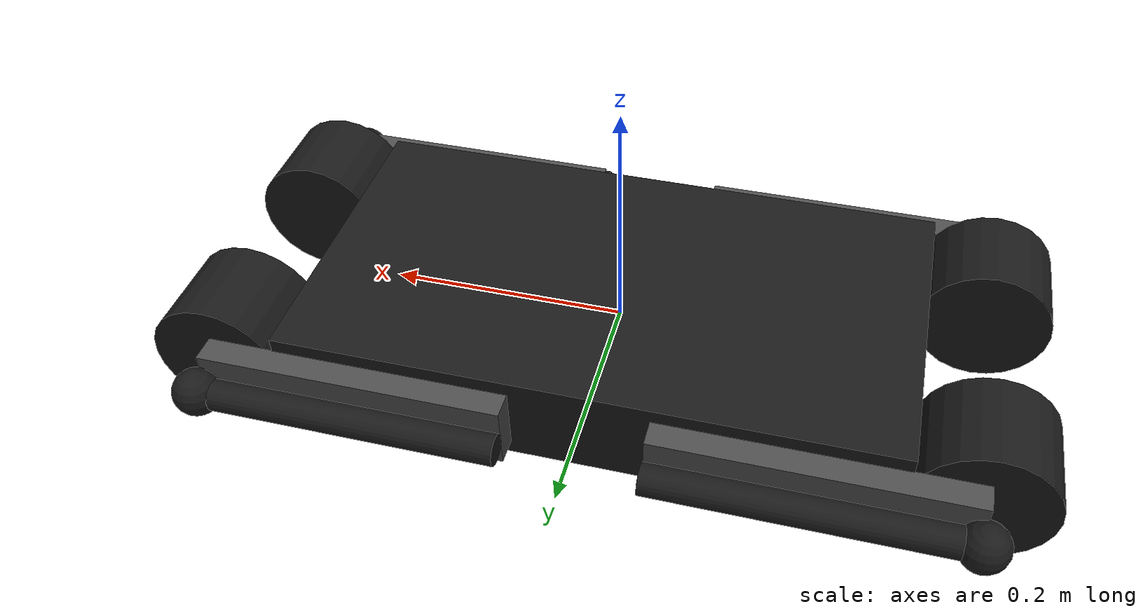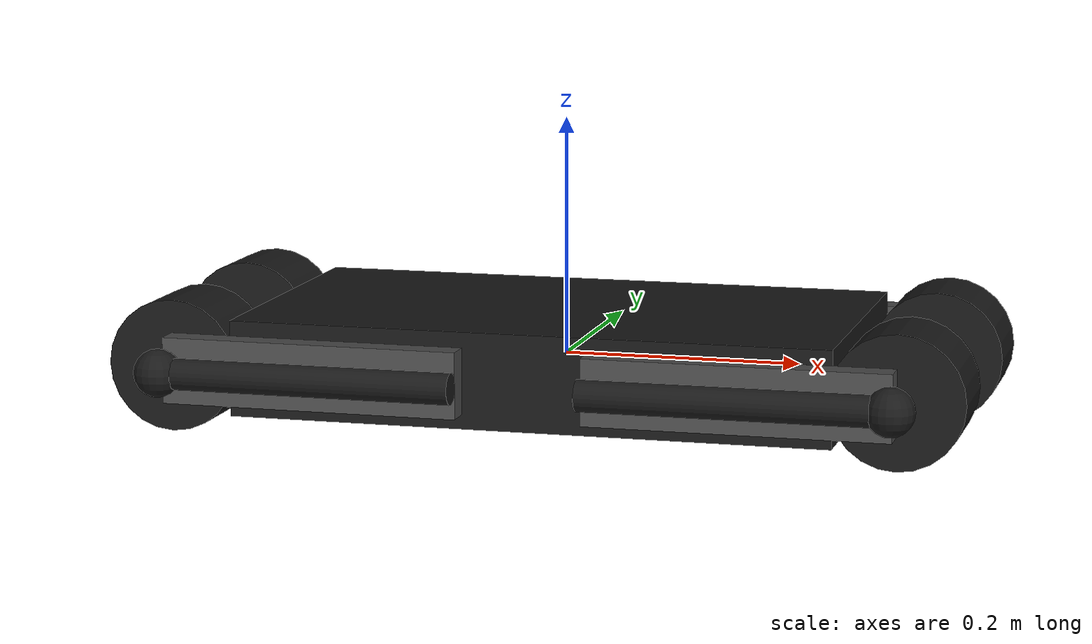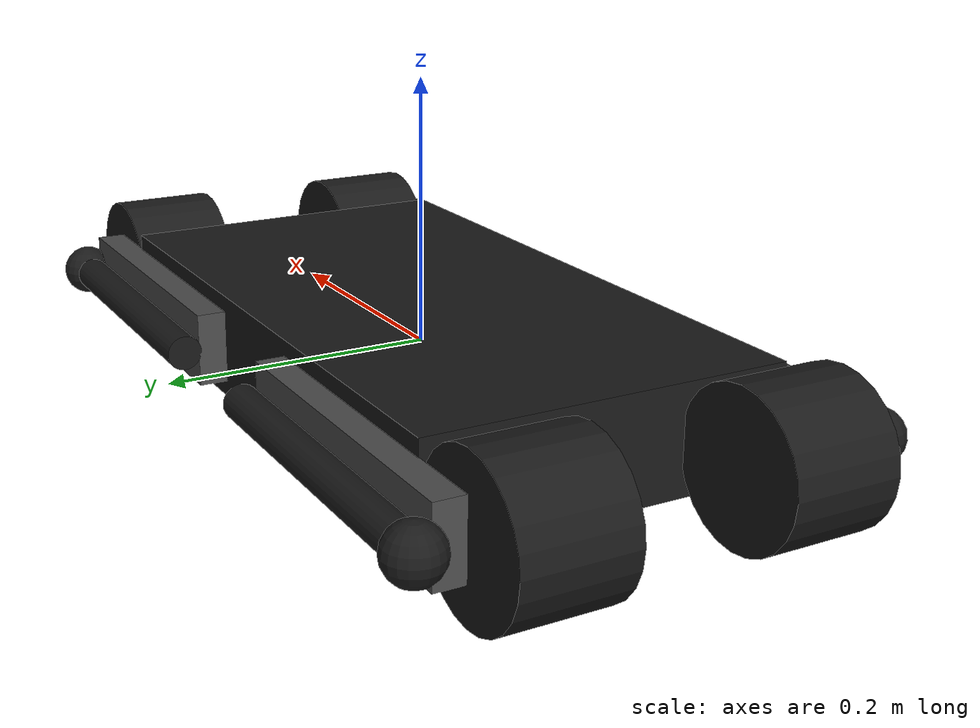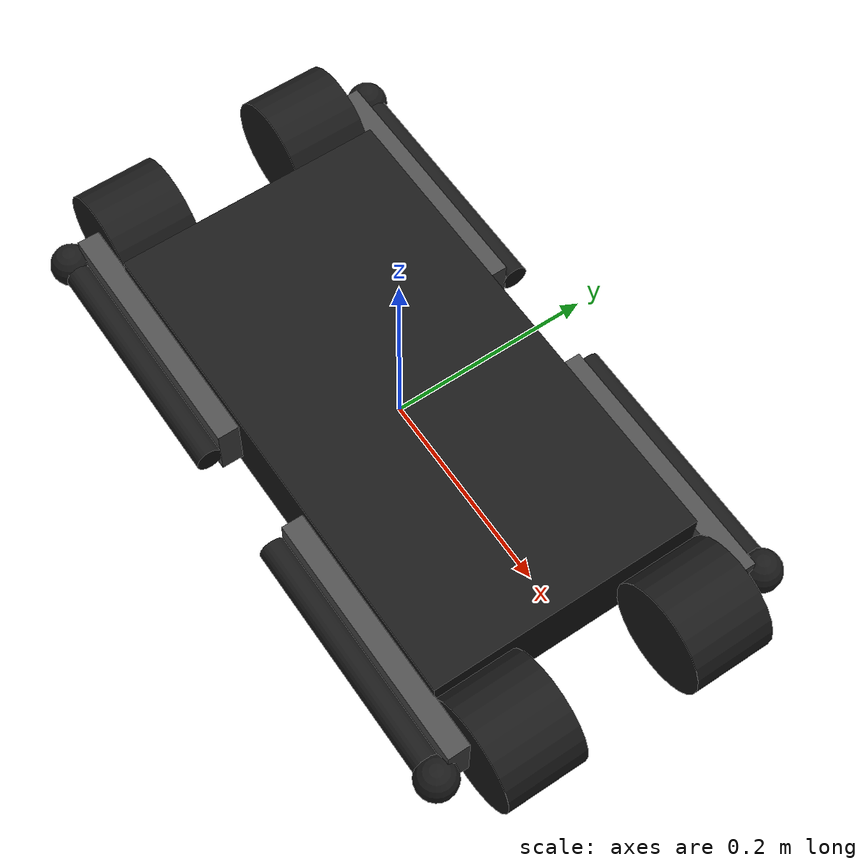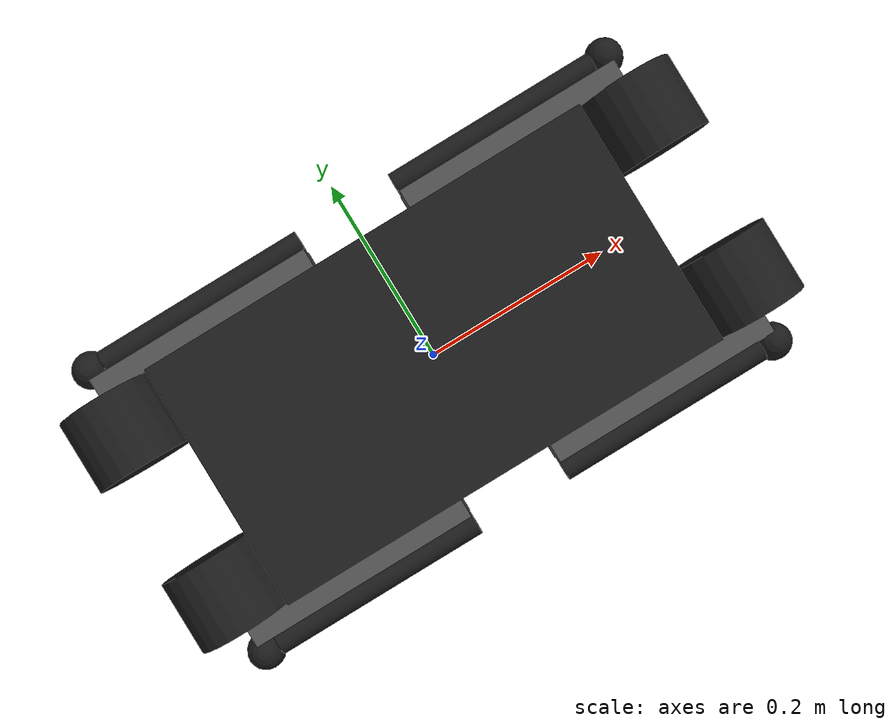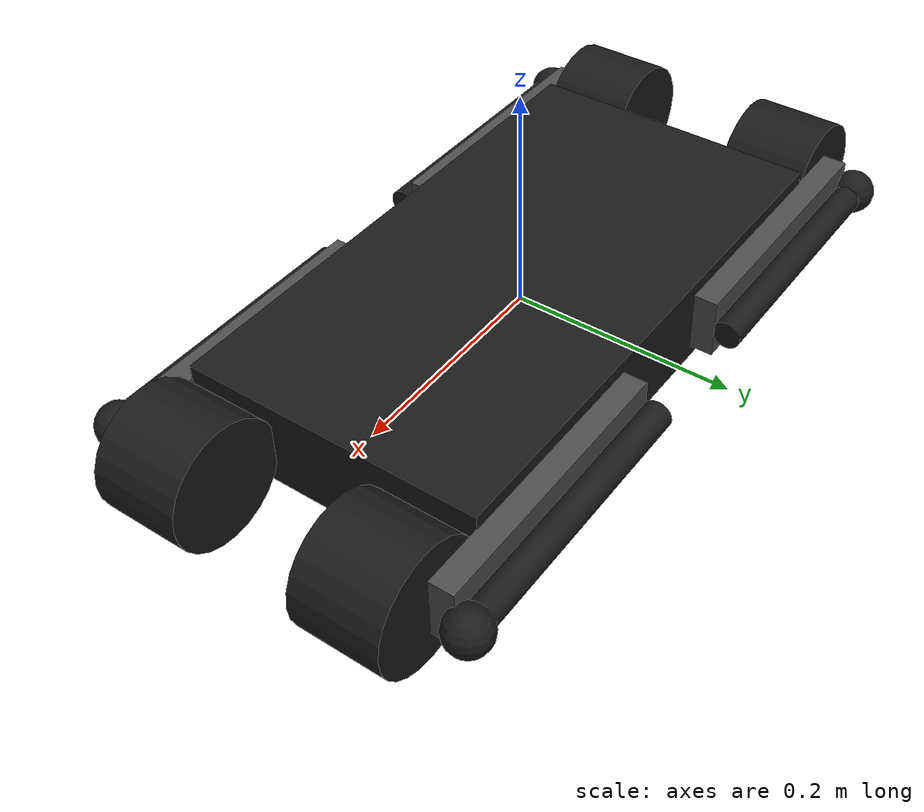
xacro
<?xml version="1.0" encoding="utf-8"?>
<robot name="yj01" xmlns:xacro="http://www.ros.org/wiki/xacro">
  <xacro:arg name="prefix" default=""/>
  <xacro:property name="prefix" value="$(arg prefix)"/>
  <!-- Define materials -->
  <material name="gray">
    <color rgba="0.2 0.2 0.2 1.0"/>
  </material>
  <material name="darkgray">
    <color rgba="0.1 0.1 0.1 1.0"/>
  </material>
  <material name="silver">
    <color rgba="0.3 0.3 0.3 1.0"/>
  </material>
  <material name="red">
    <color rgba="0.8 0.0 0.2 1.0"/>
  </material>
  <material name="scots-rose">
    <color rgba="0.937 0.2 0.251 1.0"/>
  </material>

  <!-- Body -->
  <link name="${prefix}body">
    <visual>
      <origin rpy="0 0 0" xyz="0 0 0"/>
      <geometry>
        <box size="0.502 0.272 0.080"/>
      </geometry>
      <material name="darkgray"/>
    </visual>
    <inertial>
      <mass value="7.388"/>
      <!-- Uniform box -->
      <inertia ixx="0.04948974933333334" ixy="0" ixz="0" iyy="0.15909072933333335" iyz="0" izz="0.20069994533333332"/>
    </inertial>
    <!-- Just copy geometry for collision -->
    <collision>
      <origin rpy="0 0 0" xyz="0 0 0"/>
      <geometry>
        <box size="0.502 0.272 0.08"/>
      </geometry>
    </collision>
  </link>
  <gazebo reference="${prefix}body">
    <gravity>true</gravity>
    <sensor name="imu_sensor" type="imu">
      <always_on>true</always_on>
      <visualize>true</visualize>
      <topic>__default_topic_</topic>
      <plugin filename="libgazebo_ros_imu_sensor.so" name="imu_plugin">
        <topicName>imu</topicName>
        <bodyName>${prefix}body</bodyName>
        <updateRateHZ>500.0</updateRateHZ>
        <gaussianNoise>0.0</gaussianNoise>
        <xyzOffset>0 0 0</xyzOffset>
        <rpyOffset>0 0 0</rpyOffset>
        <frameName>${prefix}body</frameName>
        <initialOrientationAsReference>true</initialOrientationAsReference>
      </plugin>
      <pose>0 0 0 0 0 0</pose>
    </sensor>
  </gazebo>
  <!-- Hip motor -->
  <link name="${prefix}hip0">
    <visual>
      <origin rpy="1.5707963268 0 0" xyz="0 0.028 0"/>
      <geometry>
        <cylinder length="0.08" radius="0.055"/>
      </geometry>
      <material name="darkgray"/>
    </visual>
    <collision>
      <origin rpy="1.5707963268 0 0" xyz="0 0.028 0"/>
      <geometry>
        <cylinder length="0.08" radius="0.055"/>
      </geometry>
    </collision>
    <inertial>
      <mass value="0.575"/>
      <inertia ixx="0.00066963541" ixy="0" ixz="0" iyy="0.00066963541" iyz="0" izz="0.0008696875"/>
    </inertial>
  </link>
  <gazebo reference="${prefix}hip0">
    <material>Gazebo/Gray</material>
  </gazebo>
  <!-- Abduction joint. Joint names are: 8 9 10 11 -->
  <joint name="8" type="revolute">
    <parent link="${prefix}body"/>
    <child link="${prefix}hip0"/>
    <axis xyz="1 0 0"/>
    <origin xyz="0.306 0.0672 0"/>
    <limit effort="21" lower="-0.707" upper="0.707" velocity="37.7"/>
    <dynamics damping="0.0" friction="0.0"/>
  </joint>
  <!-- Transmission elements required for Gazebo -->
  <transmission name="${prefix}transmission_8">
    <type>transmission_interface/SimpleTransmission</type>
    <joint name="8">
      <hardwareInterface>hardware_interface/EffortJointInterface</hardwareInterface>
    </joint>
    <actuator name="motor_8">
      <hardwareInterface>EffortJointInterface</hardwareInterface>
      <mechanicalReduction>1</mechanicalReduction>
    </actuator>
  </transmission>
  <!-- Upper leg -->
  <link name="${prefix}upper0">
    <visual>
      <origin rpy="0 0 0" xyz="-0.125 -0.022 0"/>
      <geometry>
        <box size="0.250 0.022 0.055"/>
      </geometry>
      <material name="silver"/>
    </visual>
    <collision>
      <origin rpy="0 0 0" xyz="-0.125 -0.022 0"/>
      <geometry>
        <box size="0.250 0.022 0.055"/>
      </geometry>
    </collision>
    <inertial>
      <origin rpy="0 0 0" xyz="-0.040 -0.041 0"/>
      <mass value="0.792"/>
      <inertia ixx="5e-03" ixy="0" ixz="0" iyy="0.0070" iyz="0" izz="0.0070"/>
    </inertial>
  </link>
  <gazebo reference="${prefix}upper0">
    <material>Gazebo/Gray</material>
  </gazebo>
  <!-- Hip joint. (Motor to upper leg). Joint names are: 0 2 4 6 -->
  <joint name="0" type="revolute">
    <parent link="${prefix}hip0"/>
    <child link="${prefix}upper0"/>
    <axis xyz="0 -1 0"/>
    <origin xyz="0 0.10098 0"/>
    <!--  rpy="0 -0.3 0" -->
    <limit effort="21" lower="-1.57" upper="3.14" velocity="37.7"/>
    <dynamics damping="0.0" friction="0.0"/>
  </joint>
  <!-- Transmission elements required for Gazebo -->
  <transmission name="${prefix}transmission_0">
    <type>transmission_interface/SimpleTransmission</type>
    <joint name="0">
      <hardwareInterface>hardware_interface/EffortJointInterface</hardwareInterface>
    </joint>
    <actuator name="motor_0">
      <hardwareInterface>EffortJointInterface</hardwareInterface>
      <mechanicalReduction>1</mechanicalReduction>
    </actuator>
  </transmission>
  <!-- Lower leg -->
  <link name="${prefix}lower0">
    <visual>
      <origin rpy="0 1.5707963268 0" xyz="0.125 0 0"/>
      <geometry>
        <cylinder length="0.250" radius="0.013"/>
      </geometry>
      <material name="darkgray"/>
    </visual>
    <collision>
      <origin rpy="0 1.5707963268 0" xyz="0.125 0 0"/>
      <geometry>
        <cylinder length="0.250" radius="0.013"/>
      </geometry>
    </collision>
    <inertial>
      <origin rpy="0 0 0" xyz="0.092 0 0"/>
      <mass value="0.096"/>
      <inertia ixx="1.3e-05" ixy="0" ixz="0" iyy="0.00047" iyz="0" izz="0.00047"/>
    </inertial>
  </link>
  <gazebo reference="${prefix}lower0">
    <material>Gazebo/Black</material>
  </gazebo>
  <!-- Knee joint. Joint names are: 1 3 5 7 -->
  <joint name="1" type="revolute">
    <parent link="${prefix}upper0"/>
    <child link="${prefix}lower0"/>
    <axis xyz="0 1 0"/>
    <origin xyz="-0.250 0 0"/>
    <!--rpy="0 0.5 0"-->
    <limit effort="32" lower="-3.14" upper="3.14" velocity="25.1"/>
    <dynamics damping="0.0" friction="0.0"/>
  </joint>
  <!-- Transmission elements required for Gazebo -->
  <transmission name="${prefix}transmission_1">
    <type>transmission_interface/SimpleTransmission</type>
    <joint name="1">
      <hardwareInterface>hardware_interface/EffortJointInterface</hardwareInterface>
    </joint>
    <actuator name="motor_1">
      <hardwareInterface>EffortJointInterface</hardwareInterface>
      <mechanicalReduction>1</mechanicalReduction>
    </actuator>
  </transmission>
  <!-- Toe -->
  <link name="${prefix}toe0">
    <contact>
      <friction_anchor/>
      <stiffness value="30000.0"/>
      <damping value="1000.0"/>
      <spinning_friction value="0.3"/>
      <lateral_friction value="50.0"/>
    </contact>
    <visual>
      <origin rpy="0 0 0" xyz="0 0 0"/>
      <geometry>
        <sphere radius="0.02"/>
      </geometry>
      <material name="darkgray"/>
    </visual>
    <collision>
      <origin rpy="0 0 0" xyz="0 0 0"/>
      <geometry>
        <sphere radius="0.02"/>
      </geometry>
      <surface>
        <friction>
          <ode>
            <mu>0.5</mu>
            <mu2>0.5</mu2>
          </ode>
        </friction>
        <contact>
          <ode>
            <kp>30000</kp>
            <kd>1000</kd>
          </ode>
        </contact>
      </surface>
    </collision>
    <inertial>
      <mass value="0.015"/>
      <inertia ixx="0.000025" ixy="0" ixz="0" iyy="0.000025" iyz="0" izz="0.000025"/>
    </inertial>
  </link>
  <gazebo reference="${prefix}toe0">
    <material>Gazebo/DarkGray</material>
    <collision>
      <surface>
        <bounce>
          <restitution_coefficient>0</restitution_coefficient>
          <threshold>1e+06</threshold>
        </bounce>
        <friction>
          <ode>
            <mu>0.5</mu>
            <mu2>0.5</mu2>
          </ode>
          <bullet>
            <rolling_friction>0.3</rolling_friction>
            <friction2>50.0</friction2>
          </bullet>
        </friction>
        <contact>
          <bullet>
            <kp>30000.0</kp>
            <kd>1000.0</kd>
          </bullet>
          <ode>
            <kp>30000</kp>
            <kd>1000</kd>
          </ode>
        </contact>
      </surface>
    </collision>
  </gazebo>
  <joint name="jtoe0" type="fixed">
    <parent link="${prefix}lower0"/>
    <child link="${prefix}toe0"/>
    <origin xyz="0.250 0 -0.0"/>
    <dynamics damping="0.0" friction="0.0"/>
  </joint>
  <!-- Hip motor -->
  <link name="${prefix}hip1">
    <visual>
      <origin rpy="1.5707963268 0 0" xyz="-0.0 0.028 0"/>
      <geometry>
        <cylinder length="0.08" radius="0.055"/>
      </geometry>
      <material name="darkgray"/>
    </visual>
    <collision>
      <origin rpy="1.5707963268 0 0" xyz="0 0.028 0"/>
      <geometry>
        <cylinder length="0.08" radius="0.055"/>
      </geometry>
    </collision>
    <inertial>
      <mass value="0.575"/>
      <inertia ixx="0.00066963541" ixy="0" ixz="0" iyy="0.00066963541" iyz="0" izz="0.0008696875"/>
    </inertial>
  </link>
  <gazebo reference="${prefix}hip1">
    <material>Gazebo/Gray</material>
  </gazebo>
  <!-- Abduction joint. Joint names are: 8 9 10 11 -->
  <joint name="9" type="revolute">
    <parent link="${prefix}body"/>
    <child link="${prefix}hip1"/>
    <axis xyz="1 0 0"/>
    <origin xyz="-0.306 0.0672 0"/>
    <limit effort="21" lower="-0.707" upper="0.707" velocity="37.7"/>
    <dynamics damping="0.0" friction="0.0"/>
  </joint>
  <!-- Transmission elements required for Gazebo -->
  <transmission name="${prefix}transmission_9">
    <type>transmission_interface/SimpleTransmission</type>
    <joint name="9">
      <hardwareInterface>hardware_interface/EffortJointInterface</hardwareInterface>
    </joint>
    <actuator name="motor_9">
      <hardwareInterface>EffortJointInterface</hardwareInterface>
      <mechanicalReduction>1</mechanicalReduction>
    </actuator>
  </transmission>
  <!-- Upper leg -->
  <link name="${prefix}upper1">
    <visual>
      <origin rpy="0 0 0" xyz="-0.125 -0.022 0"/>
      <geometry>
        <box size="0.250 0.022 0.055"/>
      </geometry>
      <material name="silver"/>
    </visual>
    <collision>
      <origin rpy="0 0 0" xyz="-0.125 -0.022 0"/>
      <geometry>
        <box size="0.250 0.022 0.055"/>
      </geometry>
    </collision>
    <inertial>
      <origin rpy="0 0 0" xyz="-0.040 -0.041 0"/>
      <mass value="0.792"/>
      <inertia ixx="5e-03" ixy="0" ixz="0" iyy="0.0070" iyz="0" izz="0.0070"/>
    </inertial>
  </link>
  <gazebo reference="${prefix}upper1">
    <material>Gazebo/Gray</material>
  </gazebo>
  <!-- Hip joint. (Motor to upper leg). Joint names are: 0 2 4 6 -->
  <joint name="2" type="revolute">
    <parent link="${prefix}hip1"/>
    <child link="${prefix}upper1"/>
    <axis xyz="0 1 0"/>
    <origin rpy="0 3.14 0" xyz="0 0.10098 0"/>
    <!--  rpy="0 -0.3 0" -->
    <limit effort="21" lower="-1.57" upper="3.14" velocity="37.7"/>
    <dynamics damping="0.0" friction="0.0"/>
  </joint>
  <!-- Transmission elements required for Gazebo -->
  <transmission name="${prefix}transmission_2">
    <type>transmission_interface/SimpleTransmission</type>
    <joint name="2">
      <hardwareInterface>hardware_interface/EffortJointInterface</hardwareInterface>
    </joint>
    <actuator name="motor_2">
      <hardwareInterface>EffortJointInterface</hardwareInterface>
      <mechanicalReduction>1</mechanicalReduction>
    </actuator>
  </transmission>
  <!-- Lower leg -->
  <link name="${prefix}lower1">
    <visual>
      <origin rpy="0 1.5707963268 0" xyz="0.125 0 0"/>
      <geometry>
        <cylinder length="0.250" radius="0.013"/>
      </geometry>
      <material name="darkgray"/>
    </visual>
    <collision>
      <origin rpy="0 1.5707963268 0" xyz="0.125 0 0"/>
      <geometry>
        <cylinder length="0.250" radius="0.013"/>
      </geometry>
    </collision>
    <inertial>
      <origin rpy="0 0 0" xyz="0.092 0 0"/>
      <mass value="0.096"/>
      <inertia ixx="1.3e-05" ixy="0" ixz="0" iyy="0.00047" iyz="0" izz="0.00047"/>
    </inertial>
  </link>
  <gazebo reference="${prefix}lower1">
    <material>Gazebo/Black</material>
  </gazebo>
  <!-- Knee joint. Joint names are: 1 3 5 7 -->
  <joint name="3" type="revolute">
    <parent link="${prefix}upper1"/>
    <child link="${prefix}lower1"/>
    <axis xyz="0 -1 0"/>
    <origin xyz="-0.250 0 0"/>
    <!--rpy="0 0.5 0"-->
    <limit effort="32" lower="-3.14" upper="3.14" velocity="25.1"/>
    <dynamics damping="0.0" friction="0.0"/>
  </joint>
  <!-- Transmission elements required for Gazebo -->
  <transmission name="${prefix}transmission_3">
    <type>transmission_interface/SimpleTransmission</type>
    <joint name="3">
      <hardwareInterface>hardware_interface/EffortJointInterface</hardwareInterface>
    </joint>
    <actuator name="motor_3">
      <hardwareInterface>EffortJointInterface</hardwareInterface>
      <mechanicalReduction>1</mechanicalReduction>
    </actuator>
  </transmission>
  <!-- Toe -->
  <link name="${prefix}toe1">
    <contact>
      <friction_anchor/>
      <stiffness value="30000.0"/>
      <damping value="1000.0"/>
      <spinning_friction value="0.3"/>
      <lateral_friction value="50.0"/>
    </contact>
    <visual>
      <origin rpy="0 0 0" xyz="0 0 0"/>
      <geometry>
        <sphere radius="0.02"/>
      </geometry>
      <material name="darkgray"/>
    </visual>
    <collision>
      <origin rpy="0 0 0" xyz="0 0 0"/>
      <geometry>
        <sphere radius="0.02"/>
      </geometry>
      <surface>
        <friction>
          <ode>
            <mu>0.5</mu>
            <mu2>0.5</mu2>
          </ode>
        </friction>
        <contact>
          <ode>
            <kp>30000</kp>
            <kd>1000</kd>
          </ode>
        </contact>
      </surface>
    </collision>
    <inertial>
      <mass value="0.015"/>
      <inertia ixx="0.000025" ixy="0" ixz="0" iyy="0.000025" iyz="0" izz="0.000025"/>
    </inertial>
  </link>
  <gazebo reference="${prefix}toe1">
    <material>Gazebo/DarkGray</material>
    <collision>
      <surface>
        <bounce>
          <restitution_coefficient>0</restitution_coefficient>
          <threshold>1e+06</threshold>
        </bounce>
        <friction>
          <ode>
            <mu>0.5</mu>
            <mu2>0.5</mu2>
          </ode>
          <bullet>
            <rolling_friction>0.3</rolling_friction>
            <friction2>50.0</friction2>
          </bullet>
        </friction>
        <contact>
          <bullet>
            <kp>30000.0</kp>
            <kd>1000.0</kd>
          </bullet>
          <ode>
            <kp>30000</kp>
            <kd>1000</kd>
          </ode>
        </contact>
      </surface>
    </collision>
  </gazebo>
  <joint name="jtoe1" type="fixed">
    <parent link="${prefix}lower1"/>
    <child link="${prefix}toe1"/>
    <origin xyz="0.250 0 -0.0"/>
    <dynamics damping="0.0" friction="0.0"/>
  </joint>
  <!-- Hip motor -->
  <link name="${prefix}hip2">
    <visual>
      <origin rpy="1.5707963268 0 0" xyz="0.0 -0.028 0"/>
      <geometry>
        <cylinder length="0.08" radius="0.055"/>
      </geometry>
      <material name="darkgray"/>
    </visual>
    <collision>
      <origin rpy="1.5707963268 0 0" xyz="0 -0.028 0"/>
      <geometry>
        <cylinder length="0.08" radius="0.055"/>
      </geometry>
    </collision>
    <inertial>
      <mass value="0.575"/>
      <inertia ixx="0.00066963541" ixy="0" ixz="0" iyy="0.00066963541" iyz="0" izz="0.0008696875"/>
    </inertial>
  </link>
  <gazebo reference="${prefix}hip2">
    <material>Gazebo/Gray</material>
  </gazebo>
  <!-- Abduction joint. Joint names are: 8 9 10 11 -->
  <joint name="10" type="revolute">
    <parent link="${prefix}body"/>
    <child link="${prefix}hip2"/>
    <axis xyz="1 0 0"/>
    <origin xyz="0.302 -0.0672 0"/>
    <limit effort="21" lower="-0.707" upper="0.707" velocity="37.7"/>
    <dynamics damping="0.0" friction="0.0"/>
  </joint>
  <!-- Transmission elements required for Gazebo -->
  <transmission name="${prefix}transmission_10">
    <type>transmission_interface/SimpleTransmission</type>
    <joint name="10">
      <hardwareInterface>hardware_interface/EffortJointInterface</hardwareInterface>
    </joint>
    <actuator name="motor_10">
      <hardwareInterface>EffortJointInterface</hardwareInterface>
      <mechanicalReduction>1</mechanicalReduction>
    </actuator>
  </transmission>
  <!-- Upper leg -->
  <link name="${prefix}upper2">
    <visual>
      <origin rpy="0 0 0" xyz="-0.125 0.022 0"/>
      <geometry>
        <box size="0.250 0.022 0.055"/>
      </geometry>
      <material name="silver"/>
    </visual>
    <collision>
      <origin rpy="0 0 0" xyz="-0.125 0.022 0"/>
      <geometry>
        <box size="0.250 0.022 0.055"/>
      </geometry>
    </collision>
    <inertial>
      <origin rpy="0 0 0" xyz="-0.040 0.041 0"/>
      <mass value="0.792"/>
      <inertia ixx="5e-03" ixy="0" ixz="0" iyy="0.0070" iyz="0" izz="0.0070"/>
    </inertial>
  </link>
  <gazebo reference="${prefix}upper2">
    <material>Gazebo/Gray</material>
  </gazebo>
  <!-- Hip joint. (Motor to upper leg). Joint names are: 0 2 4 6 -->
  <joint name="4" type="revolute">
    <parent link="${prefix}hip2"/>
    <child link="${prefix}upper2"/>
    <axis xyz="0 -1 0"/>
    <origin xyz="0 -0.10098 0"/>
    <limit effort="21" lower="-1.57" upper="3.14" velocity="37.7"/>
    <dynamics damping="0.0" friction="0.0"/>
  </joint>
  <!-- Transmission elements required for Gazebo -->
  <transmission name="${prefix}transmission_4">
    <type>transmission_interface/SimpleTransmission</type>
    <joint name="4">
      <hardwareInterface>hardware_interface/EffortJointInterface</hardwareInterface>
    </joint>
    <actuator name="motor_4">
      <hardwareInterface>EffortJointInterface</hardwareInterface>
      <mechanicalReduction>1</mechanicalReduction>
    </actuator>
  </transmission>
  <!-- Lower leg -->
  <link name="${prefix}lower2">
    <visual>
      <origin rpy="0 1.5707963268 0" xyz="0.125 0 0"/>
      <geometry>
        <cylinder length="0.250" radius="0.013"/>
      </geometry>
      <material name="darkgray"/>
    </visual>
    <collision>
      <origin rpy="0 1.5707963268 0" xyz="0.125 0 0"/>
      <geometry>
        <cylinder length="0.250" radius="0.013"/>
      </geometry>
    </collision>
    <inertial>
      <origin rpy="0 0 0" xyz="0.092 0 0"/>
      <mass value="0.096"/>
      <inertia ixx="1.3e-05" ixy="0" ixz="0" iyy="0.00047" iyz="0" izz="0.00047"/>
    </inertial>
  </link>
  <gazebo reference="${prefix}lower2">
    <material>Gazebo/Black</material>
  </gazebo>
  <!-- Knee joint. Joint names are: 1 3 5 7 -->
  <joint name="5" type="revolute">
    <parent link="${prefix}upper2"/>
    <child link="${prefix}lower2"/>
    <axis xyz="0 1 0"/>
    <origin xyz="-0.250 0 0"/>
    <!--rpy="0 0.5 0"-->
    <limit effort="32" lower="-3.14" upper="3.14" velocity="25.1"/>
    <dynamics damping="0.0" friction="0.0"/>
  </joint>
  <!-- Transmission elements required for Gazebo -->
  <transmission name="${prefix}transmission_5">
    <type>transmission_interface/SimpleTransmission</type>
    <joint name="5">
      <hardwareInterface>hardware_interface/EffortJointInterface</hardwareInterface>
    </joint>
    <actuator name="motor_5">
      <hardwareInterface>EffortJointInterface</hardwareInterface>
      <mechanicalReduction>1</mechanicalReduction>
    </actuator>
  </transmission>
  <!-- Toe -->
  <link name="${prefix}toe2">
    <contact>
      <friction_anchor/>
      <stiffness value="30000.0"/>
      <damping value="1000.0"/>
      <spinning_friction value="0.3"/>
      <lateral_friction value="50.0"/>
    </contact>
    <visual>
      <origin rpy="0 0 0" xyz="0 0 0"/>
      <geometry>
        <sphere radius="0.02"/>
      </geometry>
      <material name="darkgray"/>
    </visual>
    <collision>
      <origin rpy="0 0 0" xyz="0 0 0"/>
      <geometry>
        <sphere radius="0.02"/>
      </geometry>
      <surface>
        <friction>
          <ode>
            <mu>0.5</mu>
            <mu2>0.5</mu2>
          </ode>
        </friction>
        <contact>
          <ode>
            <kp>30000</kp>
            <kd>1000</kd>
          </ode>
        </contact>
      </surface>
    </collision>
    <inertial>
      <mass value="0.015"/>
      <inertia ixx="0.000025" ixy="0" ixz="0" iyy="0.000025" iyz="0" izz="0.000025"/>
    </inertial>
  </link>
  <gazebo reference="${prefix}toe2">
    <material>Gazebo/DarkGray</material>
    <collision>
      <surface>
        <bounce>
          <restitution_coefficient>0</restitution_coefficient>
          <threshold>1e+06</threshold>
        </bounce>
        <friction>
          <ode>
            <mu>0.5</mu>
            <mu2>0.5</mu2>
          </ode>
          <bullet>
            <rolling_friction>0.3</rolling_friction>
            <friction2>50.0</friction2>
          </bullet>
        </friction>
        <contact>
          <bullet>
            <kp>30000.0</kp>
            <kd>1000.0</kd>
          </bullet>
          <ode>
            <kp>30000</kp>
            <kd>1000</kd>
          </ode>
        </contact>
      </surface>
    </collision>
  </gazebo>
  <joint name="jtoe2" type="fixed">
    <parent link="${prefix}lower2"/>
    <child link="${prefix}toe2"/>
    <origin xyz="0.250 0 -0.0"/>
    <dynamics damping="0.0" friction="0.0"/>
  </joint>
  <!-- Hip motor -->
  <link name="${prefix}hip3">
    <visual>
      <origin rpy="1.5707963268 0 0" xyz="-0.0 -0.028 0"/>
      <geometry>
        <cylinder length="0.08" radius="0.055"/>
      </geometry>
      <material name="darkgray"/>
    </visual>
    <collision>
      <origin rpy="1.5707963268 0 0" xyz="0 -0.028 0"/>
      <geometry>
        <cylinder length="0.08" radius="0.055"/>
      </geometry>
    </collision>
    <inertial>
      <mass value="0.575"/>
      <inertia ixx="0.00066963541" ixy="0" ixz="0" iyy="0.00066963541" iyz="0" izz="0.0008696875"/>
    </inertial>
  </link>
  <gazebo reference="${prefix}hip3">
    <material>Gazebo/Gray</material>
  </gazebo>
  <!-- Abduction joint. Joint names are: 8 9 10 11 -->
  <joint name="11" type="revolute">
    <parent link="${prefix}body"/>
    <child link="${prefix}hip3"/>
    <axis xyz="1 0 0"/>
    <origin xyz="-0.302 -0.0672 0"/>
    <limit effort="21" lower="-0.707" upper="0.707" velocity="37.7"/>
    <dynamics damping="0.0" friction="0.0"/>
  </joint>
  <!-- Transmission elements required for Gazebo -->
  <transmission name="${prefix}transmission_11">
    <type>transmission_interface/SimpleTransmission</type>
    <joint name="11">
      <hardwareInterface>hardware_interface/EffortJointInterface</hardwareInterface>
    </joint>
    <actuator name="motor_11">
      <hardwareInterface>EffortJointInterface</hardwareInterface>
      <mechanicalReduction>1</mechanicalReduction>
    </actuator>
  </transmission>
  <!-- Upper leg -->
  <link name="${prefix}upper3">
    <visual>
      <origin rpy="0 0 0" xyz="-0.125 0.022 0"/>
      <geometry>
        <box size="0.250 0.022 0.055"/>
      </geometry>
      <material name="silver"/>
    </visual>
    <collision>
      <origin rpy="0 0 0" xyz="-0.125 0.022 0"/>
      <geometry>
        <box size="0.250 0.022 0.055"/>
      </geometry>
    </collision>
    <inertial>
      <origin rpy="0 0 0" xyz="-0.040 0.041 0"/>
      <mass value="0.792"/>
      <inertia ixx="5e-03" ixy="0" ixz="0" iyy="0.0070" iyz="0" izz="0.0070"/>
    </inertial>
  </link>
  <gazebo reference="${prefix}upper3">
    <material>Gazebo/Gray</material>
  </gazebo>
  <!-- Hip joint. (Motor to upper leg). Joint names are: 0 2 4 6 -->
  <joint name="6" type="revolute">
    <parent link="${prefix}hip3"/>
    <child link="${prefix}upper3"/>
    <axis xyz="0 1 0"/>
    <origin rpy="0 -3.14 0" xyz="0 -0.10098 0"/>
    <!--  rpy="0 -0.3 0" -->
    <limit effort="21" lower="-1.57" upper="3.14" velocity="37.7"/>
    <dynamics damping="0.0" friction="0.0"/>
  </joint>
  <!-- Transmission elements required for Gazebo -->
  <transmission name="${prefix}transmission_6">
    <type>transmission_interface/SimpleTransmission</type>
    <joint name="6">
      <hardwareInterface>hardware_interface/EffortJointInterface</hardwareInterface>
    </joint>
    <actuator name="motor_6">
      <hardwareInterface>EffortJointInterface</hardwareInterface>
      <mechanicalReduction>1</mechanicalReduction>
    </actuator>
  </transmission>
  <!-- Lower leg -->
  <link name="${prefix}lower3">
    <visual>
      <origin rpy="0 1.5707963268 0" xyz="0.125 0 0"/>
      <geometry>
        <cylinder length="0.250" radius="0.013"/>
      </geometry>
      <material name="darkgray"/>
    </visual>
    <collision>
      <origin rpy="0 1.5707963268 0" xyz="0.125 0 0"/>
      <geometry>
        <cylinder length="0.250" radius="0.013"/>
      </geometry>
    </collision>
    <inertial>
      <origin rpy="0 0 0" xyz="0.092 0 0"/>
      <mass value="0.096"/>
      <inertia ixx="1.3e-05" ixy="0" ixz="0" iyy="0.00047" iyz="0" izz="0.00047"/>
    </inertial>
  </link>
  <gazebo reference="${prefix}lower3">
    <material>Gazebo/Black</material>
  </gazebo>
  <!-- Knee joint. Joint names are: 1 3 5 7 -->
  <joint name="7" type="revolute">
    <parent link="${prefix}upper3"/>
    <child link="${prefix}lower3"/>
    <axis xyz="0 -1 0"/>
    <origin xyz="-0.250 0 0"/>
    <!--rpy="0 0.5 0"-->
    <limit effort="32" lower="-3.14" upper="3.14" velocity="25.1"/>
    <dynamics damping="0.0" friction="0.0"/>
  </joint>
  <!-- Transmission elements required for Gazebo -->
  <transmission name="${prefix}transmission_7">
    <type>transmission_interface/SimpleTransmission</type>
    <joint name="7">
      <hardwareInterface>hardware_interface/EffortJointInterface</hardwareInterface>
    </joint>
    <actuator name="motor_7">
      <hardwareInterface>EffortJointInterface</hardwareInterface>
      <mechanicalReduction>1</mechanicalReduction>
    </actuator>
  </transmission>
  <!-- Toe -->
  <link name="${prefix}toe3">
    <contact>
      <friction_anchor/>
      <stiffness value="30000.0"/>
      <damping value="1000.0"/>
      <spinning_friction value="0.3"/>
      <lateral_friction value="50.0"/>
    </contact>
    <visual>
      <origin rpy="0 0 0" xyz="0 0 0"/>
      <geometry>
        <sphere radius="0.02"/>
      </geometry>
      <material name="darkgray"/>
    </visual>
    <collision>
      <origin rpy="0 0 0" xyz="0 0 0"/>
      <geometry>
        <sphere radius="0.02"/>
      </geometry>
      <surface>
        <friction>
          <ode>
            <mu>0.5</mu>
            <mu2>0.5</mu2>
          </ode>
        </friction>
        <contact>
          <ode>
            <kp>30000</kp>
            <kd>1000</kd>
          </ode>
        </contact>
      </surface>
    </collision>
    <inertial>
      <mass value="0.015"/>
      <inertia ixx="0.000025" ixy="0" ixz="0" iyy="0.000025" iyz="0" izz="0.000025"/>
    </inertial>
  </link>
  <gazebo reference="${prefix}toe3">
    <material>Gazebo/DarkGray</material>
    <collision>
      <surface>
        <bounce>
          <restitution_coefficient>0</restitution_coefficient>
          <threshold>1e+06</threshold>
        </bounce>
        <friction>
          <ode>
            <mu>0.5</mu>
            <mu2>0.5</mu2>
          </ode>
          <bullet>
            <rolling_friction>0.3</rolling_friction>
            <friction2>50.0</friction2>
          </bullet>
        </friction>
        <contact>
          <bullet>
            <kp>30000.0</kp>
            <kd>1000.0</kd>
          </bullet>
          <ode>
            <kp>30000</kp>
            <kd>1000</kd>
          </ode>
        </contact>
      </surface>
    </collision>
  </gazebo>
  <joint name="jtoe3" type="fixed">
    <parent link="${prefix}lower3"/>
    <child link="${prefix}toe3"/>
    <origin xyz="0.250 0 -0.0"/>
    <dynamics damping="0.0" friction="0.0"/>
  </joint>

  <ros2_control name="GazeboSimSystem" type="system">
    <hardware>
      <plugin>gz_ros2_control/GazeboSimSystem</plugin>
    </hardware>
    <joint name="0">
      <command_interface name="effort" />
      <state_interface name="velocity" />
      <state_interface name="position" />
    </joint>
    <joint name="1">
      <command_interface name="effort" />
      <state_interface name="velocity" />
      <state_interface name="position" />
    </joint>
    <joint name="2">
      <command_interface name="effort" />
      <state_interface name="velocity" />
      <state_interface name="position" />
    </joint>
    <joint name="3">
      <command_interface name="effort" />
      <state_interface name="velocity" />
      <state_interface name="position" />
    </joint>
    <joint name="4">
      <command_interface name="effort" />
      <state_interface name="velocity" />
      <state_interface name="position" />
    </joint>
    <joint name="5">
      <command_interface name="effort" />
      <state_interface name="velocity" />
      <state_interface name="position" />
    </joint>
    <joint name="6">
      <command_interface name="effort" />
      <state_interface name="velocity" />
      <state_interface name="position" />
    </joint>
    <joint name="7">
      <command_interface name="effort" />
      <state_interface name="velocity" />
      <state_interface name="position" />
    </joint>
    <joint name="8">
      <command_interface name="effort" />
      <state_interface name="velocity" />
      <state_interface name="position" />
    </joint>
    <joint name="9">
      <command_interface name="effort" />
      <state_interface name="velocity" />
      <state_interface name="position" />
    </joint>
    <joint name="10">
      <command_interface name="effort" />
      <state_interface name="velocity" />
      <state_interface name="position" />
    </joint>
    <joint name="11">
      <command_interface name="effort" />
      <state_interface name="velocity" />
      <state_interface name="position" />
    </joint>
  </ros2_control>

</robot>
